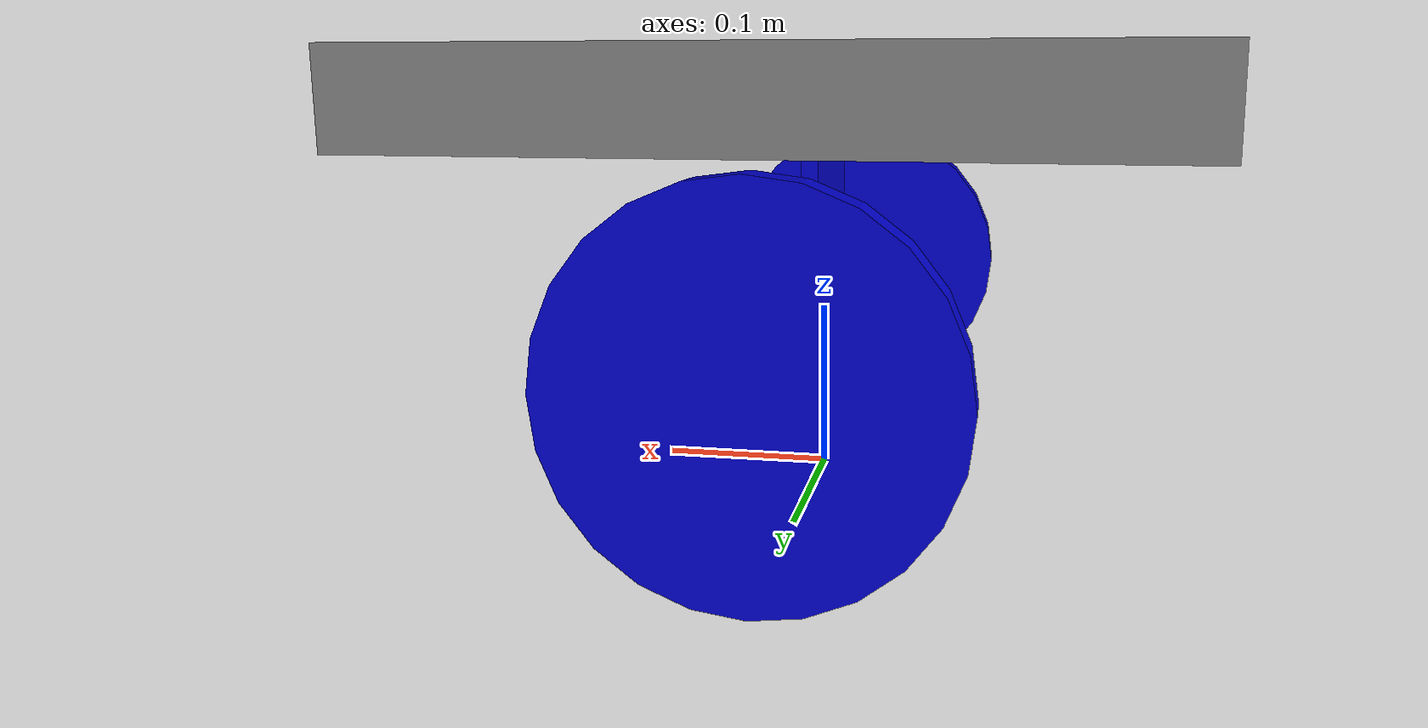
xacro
<?xml version="1.0"?>

<robot name="balancing_robot" xmlns:xacro="http://ros.org/wiki/xacro">

    <xacro:property name="base_link_length" value="0.4"/>
    <xacro:property name="base_link_radius" value="0.01"/>
    <xacro:property name="wheel_radius" value="0.1"/>
    <xacro:property name="wheel_width" value="0.02"/>
    <xacro:property name="support_x" value="0.01"/>
    <xacro:property name="support_y" value="0.1"/>
    <xacro:property name="support_z" value="0.13"/>
    <xacro:property name="UAV_x" value="0.4"/>
    <xacro:property name="UAV_y" value="0.4"/>
    <xacro:property name="UAV_z" value="0.05"/>
    <xacro:property name="dummy_link_radius" value="0.001"/>

    <material name="gray">
        <color rgba="0.5 0.5 0.5 1.0"/>
    </material>
    <material name="blue">
        <color rgba="0.0 0.0 0.8 1.0"/>
    </material>

    <!-- Virtual linkage, as specifying inertia on the base_link is not supported -->
    <link name="dummy_link">
        <visual>
            <geometry>
                <sphere radius="${dummy_link_radius}"/>
            </geometry>
        </visual>
    </link>

    <link name="base_link">
        <visual>
            <origin rpy="1.5707 0 0"/>
            <geometry>
                <cylinder radius="${base_link_radius}" length="${base_link_length}"/>
            </geometry>
            <material name="gray"/>
        </visual>
        <collision>
            <origin rpy="1.5707 0 0"/>
            <geometry>
                <cylinder radius="${base_link_radius}" length="${base_link_length}"/>
            </geometry>
        </collision>
        <inertial>
            <mass value="0.1"/>
            <inertia ixx="0.001336" ixy="0.0" ixz="0.0" iyy="0.001336" iyz="0.0" izz="0.000005"/>
        </inertial>
    </link>

    <joint name="dummy_to_base" type="fixed">
        <parent link="dummy_link"/>
        <child link="base_link"/>
        <origin xyz="0 0 0.1"/>
    </joint>

    <xacro:macro name="wheel" params="param pos">
        <link name="${pos}_wheel">
            <visual>
                <origin xyz="0 0 0" rpy="1.5707 0 0"/>
                <geometry>
                    <cylinder radius="${wheel_radius}" length="${wheel_width}"/>
                </geometry>
                <material name="blue"/>
            </visual>
            <collision>
                <origin xyz="0 0 0" rpy="1.5707 0 0"/>
                <geometry>
                    <cylinder radius="${wheel_radius}" length="${wheel_width}"/>
                </geometry>
            </collision>
            <inertial>
                <mass value="0.5"/>
                <inertia ixx="0.00127" ixy="0.0" ixz="0.0" iyy="0.00127" iyz="0.0" izz="0.0025"/>
            </inertial>
        </link>

        <joint name="base_to_${pos}_wheel" type="continuous">
            <parent link="base_link"/>
            <child link="${pos}_wheel"/>
            <origin xyz="0 ${param * base_link_length/2} 0"/>
            <axis xyz="0 1 0"/>
        </joint>

        <gazebo reference="${pos}_wheel">
            <mu1 value="200"/>
            <mu2 value="100"/>
            <material>Gazebo/Grey</material>
        </gazebo>

        <transmission name="${pos}_wheel_trans">
            <type>transmission_interface/SimpleTransmission</type>
            <joint name="base_to_${pos}_wheel">
                <hardwareInterface>hardware_interface/EffortJointInterface</hardwareInterface>
            </joint>
            <actuator name="${pos}_wheel_motor">
                <mechanicalReduction>1.0</mechanicalReduction>
            </actuator>
        </transmission>
    </xacro:macro>

    <xacro:wheel param="1" pos="left"/>
    <xacro:wheel param="-1" pos="right"/>

    <link name="support">
        <visual>
            <origin xyz="0.0 0.0 0"/>
            <geometry>
                <box size="${support_x} ${support_y} ${support_z}"/>
            </geometry>
            <material name="blue"/>
        </visual>
        <collision>
            <origin xyz="0.0 0.0 ${support_z/2}"/>
            <geometry>
                <box size="${support_x} ${support_y} ${support_z}"/>
            </geometry>
        </collision>
        <inertial>
            <mass value="0.1"/>
            <inertia ixx="0.00083" ixy="0.0" ixz="0.0" iyy="0.00075" iyz="0.0" izz="0.00008"/>
        </inertial>
    </link>

    <joint name="base_to_support" type="fixed">
        <parent link="base_link"/>
        <child link="support"/>
        <origin xyz="0.0 0.0 ${support_z/2}"/>
    </joint>

    <link name="UAV">
        <visual name="">
            <origin xyz="0.0 0.0 0"/>
            <geometry>
                <box size="${UAV_x} ${UAV_y} ${UAV_z}"/>
            </geometry>
            <material name="gray"/>
        </visual>
        <collision>
            <origin xyz="0.0 0.0 ${support_z}"/>
            <geometry>
                <box size="${UAV_x} ${UAV_y} ${UAV_z}"/>
            </geometry>
        </collision>
        <inertial>
            <mass value="4"/>
            <inertia ixx="0.05417" ixy="0.0" ixz="0.0" iyy="0.05417" iyz="0.0" izz="0.10667"/>
        </inertial>
    </link>

    <joint name="UAV_to_support" type="fixed">
        <parent link="support"/>
        <child link="UAV"/>
        <origin xyz="0.0 0.0 ${support_z/2}"/>
    </joint>

    <gazebo>
        <plugin name="gazebo_ros_control" filename="libgazebo_ros_control.so">
            <robotNamespace>/</robotNamespace>
            <updateRate>1</updateRate>
            <torque>1</torque>
            <robotBaseFrame>base_link</robotBaseFrame>
            <leftFrontJoint>base_to_left_wheel</leftFrontJoint>
            <rightFrontJoint>base_to_right_wheel</rightFrontJoint>
            <wheelSeparation>${base_link_length}</wheelSeparation>
            <wheelDiameter>${2*wheel_radius}</wheelDiameter>
            <broadcastTF>1</broadcastTF>
            <publishWheelTF>false</publishWheelTF>
            <publishWheelJointState>false</publishWheelJointState>
            <odometryTopic>odom</odometryTopic>
            <odometryFrame>odom</odometryFrame>
            <odometryRate>20</odometryRate>
            <cmdTimeout>-1</cmdTimeout>
        </plugin>
    </gazebo>

    <gazebo reference="support">
        <gravity>true</gravity>
        <sensor name="imu_sensor" type="imu">
            <always_on>true</always_on>
            <update_rate>50</update_rate>
            <visualize>true</visualize>
            <topic>__default_topic__</topic>
            <plugin filename="libgazebo_ros_imu_sensor.so" name="imu_plugin">
                <topicName>imu/data</topicName>
                <bodyName>body_link</bodyName>
                <updateRateHZ>50.0</updateRateHZ>
                <gaussianNoise>0.0</gaussianNoise>
                <xyzOffset>0 0 0</xyzOffset>
                <rpyOffset>0 0 0</rpyOffset>
                <frameName>imu_link</frameName>
            </plugin>
            <pose>0 0 0 0 0 0</pose>
        </sensor>
    </gazebo>

</robot>
